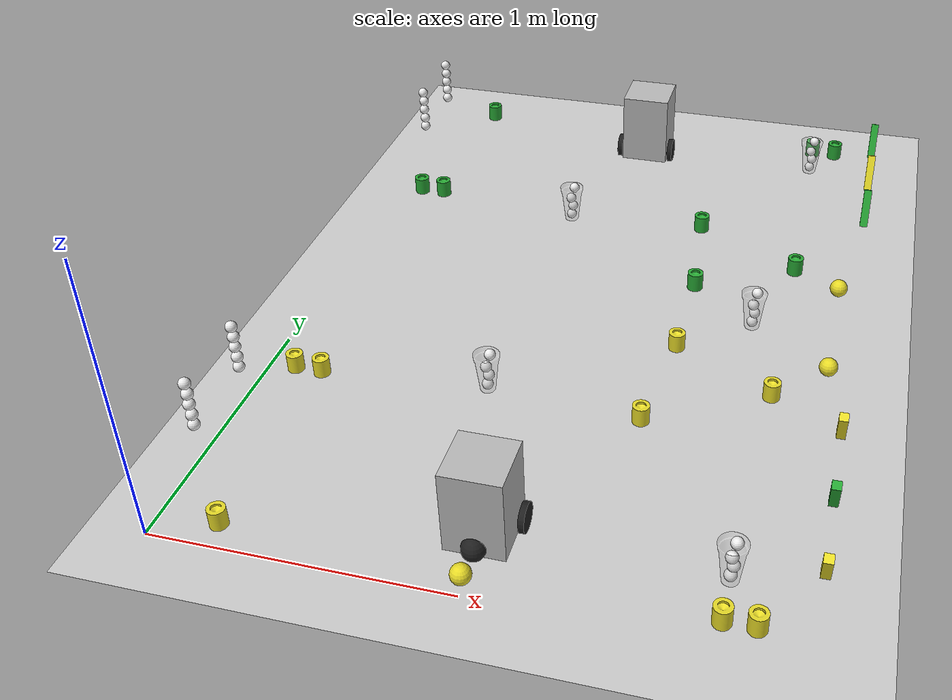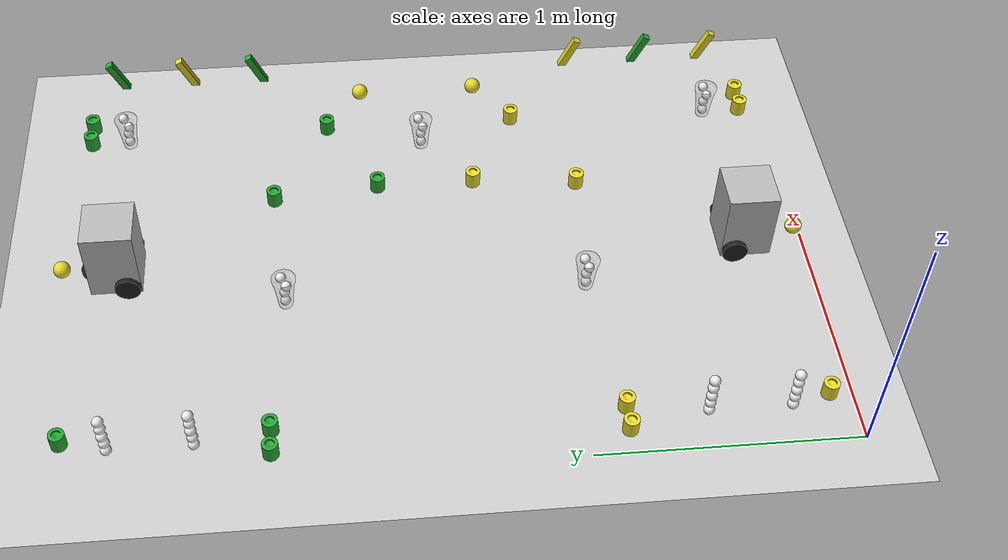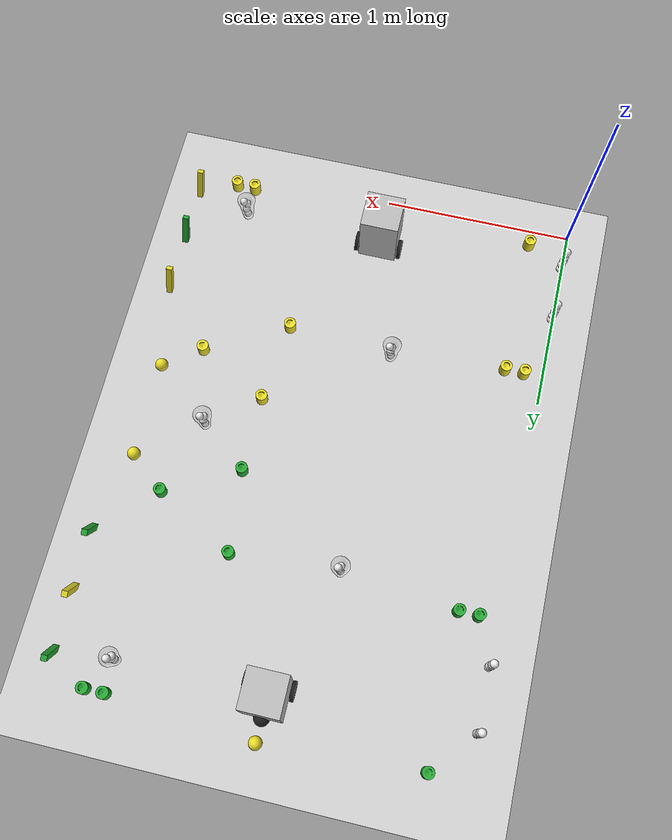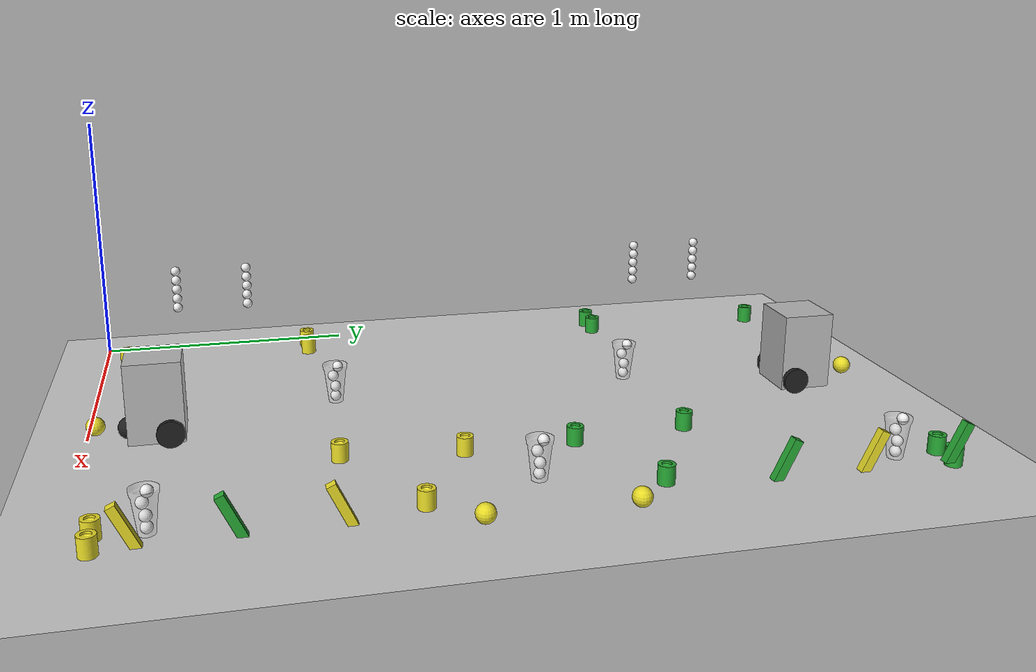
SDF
<sdf version="1.5">
 <world name="default">
  <scene>
   <sky><clouds><speed>12</speed></clouds></sky>
   <ambient>0.4 0.4 0.4 1</ambient>
   <background>0.7 0.7 0.7 1</background>
   <shadows>1</shadows>
  </scene>
  <include><name>soleil</name><uri>model://sun</uri></include>
  <include><name>terre</name><uri>model://ground_plane</uri></include>
  <include><name>rosebot1</name><pose>1 0.25 0 0 0 1.5707</pose><uri>model://rosebot</uri></include>
  <include><name>adversaire</name><pose>1 2.75 0 0 0 -1.5707</pose><uri>model://rosebot</uri></include>
  <include><name>gobelet1</name><pose>1.75 0.25 0 0 0 0</pose><uri>model://gobelet</uri></include>
  <include><name>gobelet2</name><pose>.8 0.91 0 0 0 0</pose><uri>model://gobelet</uri></include>
  <include><name>gobelet3</name><pose>1.65 1.5 0 0 0 0</pose><uri>model://gobelet</uri></include>
  <include><name>gobelet4</name><pose>.8 2.09 0 0 0 0</pose><uri>model://gobelet</uri></include>
  <include><name>gobelet5</name><pose>1.75 2.75 0 0 0 0</pose><uri>model://gobelet</uri></include>
  <include><name>recharge1</name><pose>0.035 .3 0.191 0 0 0</pose><uri>model://popcornx5</uri></include>
  <include><name>recharge2</name><pose>0.035 .6 0.191 0 0 0</pose><uri>model://popcornx5</uri></include>
  <include><name>recharge3</name><pose>0.035 2.4 0.191 0 0 0</pose><uri>model://popcornx5</uri></include>
  <include><name>recharge4</name><pose>0.035 2.7 0.191 0 0 0</pose><uri>model://popcornx5</uri></include>
  <include><name>clap_jaune1</name><pose>2. .260 .101 0 0 1.5707</pose><uri>model://clap_jaune</uri></include>
  <include><name>clap_jaune2</name><pose>2. .860 .101 0 0 1.5707</pose><uri>model://clap_jaune</uri></include>
  <include>
   <name>clap_jaune3</name>
   <pose>2.03 2.450 .101 0 0 -1.5707</pose>
   <uri>model://clap_jaune</uri>
  </include>
  <include><name>clap_vert1</name><pose>2.03 2.750 .101 0 0 -1.5707</pose><uri>model://clap_vert</uri></include>
  <include>
   <name>clap_vert2</name>
   <pose>2.03 2.150 0.101 0 0 -1.5707</pose>
   <uri>model://clap_vert</uri>
  </include>
  <include><name>clap_vert3</name><pose>2 0.550 .101 0 0 1.5707</pose><uri>model://clap_vert</uri></include>
  <include><name>piedjaune1</name><pose>.2 .09 0 0 0 0</pose><uri>model://piedjaune</uri></include>
  <include><name>piedjaune2</name><pose>1.85 0.09 0 0 0 0</pose><uri>model://piedjaune</uri></include>
  <include><name>piedjaune3</name><pose>1.75 0.09 0 0 0 0</pose><uri>model://piedjaune</uri></include>
  <include><name>piedjaune4</name><pose>0.1 0.85 0 0 0 0</pose><uri>model://piedjaune</uri></include>
  <include><name>piedjaune5</name><pose>0.2 0.85 0 0 0 0</pose><uri>model://piedjaune</uri></include>
  <include><name>piedjaune6</name><pose>1.355 0.87 0 0 0 0</pose><uri>model://piedjaune</uri></include>
  <include><name>piedjaune7</name><pose>1.4 1.3 0 0 0 0</pose><uri>model://piedjaune</uri></include>
  <include><name>piedjaune8</name><pose>1.77 1.1 0 0 0 0</pose><uri>model://piedjaune</uri></include>
  <include><name>piedvert1</name><pose>.2 2.91 0 0 0 0</pose><uri>model://piedvert</uri></include>
  <include><name>piedvert2</name><pose>1.85 2.91 0 0 0 0</pose><uri>model://piedvert</uri></include>
  <include><name>piedvert3</name><pose>1.75 2.91 0 0 0 0</pose><uri>model://piedvert</uri></include>
  <include><name>piedvert4</name><pose>0.1 2.15 0 0 0 0</pose><uri>model://piedvert</uri></include>
  <include><name>piedvert5</name><pose>0.2 2.15 0 0 0 0</pose><uri>model://piedvert</uri></include>
  <include><name>piedvert6</name><pose>1.355 2.13 0 0 0 0</pose><uri>model://piedvert</uri></include>
  <include><name>piedvert7</name><pose>1.4 1.7 0 0 0 0</pose><uri>model://piedvert</uri></include>
  <include><name>piedvert8</name><pose>1.77 1.9 0 0 0 0</pose><uri>model://piedvert</uri></include>
  <include><name>ampoule1</name><pose>1. 0.035 .055 0 0 0</pose><uri>model://ampoule</uri></include>
  <include><name>ampoule2</name><pose>1. 2.965 .055 0 0 0</pose><uri>model://ampoule</uri></include>
  <include><name>ampoule3</name><pose>1.95 1.250 .055 0 0 0</pose><uri>model://ampoule</uri></include>
  <include><name>ampoule4</name><pose>1.95 1.750 .055 0 0 0</pose><uri>model://ampoule</uri></include>
  <physics type="ode">
   <max_step_size>0.001</max_step_size>
   <real_time_factor>1</real_time_factor>
   <real_time_update_rate>1000</real_time_update_rate>
   <gravity>0 0 -9.8</gravity>
   <magnetic_field>5.5645e-06 2.28758e-05 -4.23884e-05</magnetic_field>
  </physics>
  <scene><ambient>0.4 0.4 0.4 1</ambient><background>0.7 0.7 0.7 1</background><shadows>1</shadows></scene>
 </world>
</sdf>

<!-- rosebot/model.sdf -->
<sdf version="1.5">
  <model name="Rosebot">
    <link name="chassis">
      <pose>0 0 .16 0 0 0</pose>
      <inertial>
        <mass>5.67</mass>
        <inertia>
          <ixx>0.07</ixx>
          <iyy>0.08</iyy>
          <izz>0.10</izz>
          <ixy>0</ixy>
          <ixz>0</ixz>
          <iyz>0</iyz>
        </inertia>
      </inertial>
      <collision name="collision">
        <geometry>
          <box>
            <size>0.2 0.2 0.3</size>
          </box>
        </geometry>
      </collision>
      <collision name="castor_collision">
        <pose>-0.1 0 -0.12 0 0 0</pose>
        <geometry>
          <sphere>
            <radius>0.04</radius>
          </sphere>
        </geometry>
        <surface>
          <friction>
            <ode>
              <mu>0</mu>
              <mu2>0</mu2>
              <slip1>1.0</slip1>
              <slip2>1.0</slip2>
            </ode>
          </friction>
        </surface>
      </collision>
      <visual name="visual">
        <geometry>
          <box>
            <size>0.2 0.2 0.3</size>
          </box>
        </geometry>
      </visual>
      <visual name="castor_visual">
        <pose>-0.1 0 -0.12 0 0 0</pose>
        <geometry>
          <sphere>
            <radius>0.04</radius>
          </sphere>
        </geometry>
        <material>
          <script>
            <uri>file://media/materials/scripts/gazebo.material</uri>
            <name>Gazebo/FlatBlack</name>
          </script>
        </material>
      </visual>
    </link>
    <link name="right_wheel">
      <pose>0.05 -.115 0.05 0 1.5707 1.5707</pose>
      <inertial>
        <mass>1.5</mass>
        <inertia>
          <ixx>0.0051</ixx>
          <iyy>0.0051</iyy>
          <izz>0.0090</izz>
          <ixy>0</ixy>
          <ixz>0</ixz>
          <iyz>0</iyz>
        </inertia>
      </inertial>
      <collision name="collision">
        <geometry>
          <cylinder>
            <radius>0.05</radius>
            <length>0.02</length>
          </cylinder>
        </geometry>
        <surface>
          <friction>
            <ode>
              <mu>100000.0</mu>
              <mu2>100000.0</mu2>
              <slip1>0.0</slip1>
              <slip2>0.0</slip2>
            </ode>
          </friction>
        </surface>
      </collision>
      <visual name="visual">
        <geometry>
          <cylinder>
            <radius>0.05</radius>
            <length>0.02</length>
          </cylinder>
        </geometry>
        <material>
          <script>
            <uri>file://media/materials/scripts/gazebo.material</uri>
            <name>Gazebo/FlatBlack</name>
          </script>
        </material>
      </visual>
    </link>
    <link name="left_wheel">
      <pose>0.05 .115 0.05 0 1.5707 1.5707</pose>
      <inertial>
        <mass>1.5</mass>
        <inertia>
          <ixx>0.0051</ixx>
          <iyy>0.0051</iyy>
          <izz>0.0090</izz>
          <ixy>0</ixy>
          <ixz>0</ixz>
          <iyz>0</iyz>
        </inertia>
      </inertial>
      <collision name="collision">
        <geometry>
          <cylinder>
            <radius>0.05</radius>
            <length>0.02</length>
          </cylinder>
        </geometry>
        <surface>
          <friction>
            <ode>
              <mu>100000.0</mu>
              <mu2>100000.0</mu2>
              <slip1>0.0</slip1>
              <slip2>0.0</slip2>
            </ode>
          </friction>
        </surface>
      </collision>
      <visual name="visual">
        <geometry>
          <cylinder>
            <radius>0.05</radius>
            <length>0.02</length>
          </cylinder>
        </geometry>
        <material>
          <script>
            <uri>file://media/materials/scripts/gazebo.material</uri>
            <name>Gazebo/FlatBlack</name>
          </script>
        </material>
      </visual>
    </link>
    <joint name="left_wheel_hinge" type="revolute">
      <child>left_wheel</child>
      <parent>chassis</parent>
      <axis>
        <xyz>0 1 0</xyz>
        <use_parent_model_frame>true</use_parent_model_frame>
      </axis>
    </joint>
    <joint name="right_wheel_hinge" type="revolute">
      <child>right_wheel</child>
      <parent>chassis</parent>
      <axis>
        <xyz>0 1 0</xyz>
        <use_parent_model_frame>true</use_parent_model_frame>
      </axis>
    </joint>
	<plugin name="rosebot_gazebo" filename="libgazebo_ros_diff_drive.so">
		<updateRate>100</updateRate>
		<leftJoint>left_wheel_hinge</leftJoint>
		<rightJoint>right_wheel_hinge</rightJoint>
		<wheelAcceleration>0</wheelAcceleration>
	    <wheelDiameter>0.1</wheelDiameter>
		<wheelTorque>5.0</wheelTorque>
		<publishWheelTF>1</publishWheelTF>
	</plugin>

  </model>
</sdf>

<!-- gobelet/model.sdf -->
<sdf version="1.5">
  <model name="gobelet">
	<link name="link">
       <inertial>
          <pose>0 0 0.078 0 0 0</pose>
		  <mass>.03</mass>
		  <inertia>
			<ixx>0.000082165</ixx>
		  	<ixy>0</ixy>
		  	<ixz>0</ixz>
		  	<iyy>0.000082165</iyy>
		  	<iyz>0</iyz>
		  	<izz>0.00003787</izz>
		  </inertia>
        </inertial>
	<collision name="collision">
	  <geometry>
	    <mesh>
		<scale>0.001 0.001 0.001</scale>
		<uri>model://gobelet/meshes/gobelet.dae</uri>
	    </mesh>
	  </geometry>
	</collision>
	<visual name="visual">
 	  <transparency>.7</transparency>
	  <geometry>
	    <mesh>
		<scale>0.001 0.001 0.001</scale>
		<uri>model://gobelet/meshes/gobelet.dae</uri>
	    </mesh>
	  </geometry>
        <material>
          <script>
            <uri>file://media/materials/scripts/gazebo.material</uri>
            <name>Gazebo/White</name>
          </script>
        </material>
	</visual>
      </link>
	 <include>
		<name>pop1</name>
		<pose>0 0 .022 0 0 0</pose>
		<uri>model://popcorn</uri>
	    </include>
	    <include>
		<name>pop2</name>
		<pose>0.006 0 .063 0 0 0</pose>
		<uri>model://popcorn</uri>
	    </include>
	    <include>
		<name>pop3</name>
		<pose>0 -0.008 .104 0 0 0</pose>
		<uri>model://popcorn</uri>
	    </include>
	    <include>
		<name>pop4</name>
		<pose>0.01 0.01 .145 0 0 0</pose>
		<uri>model://popcorn</uri>
	    </include>
    </model>
 </sdf>

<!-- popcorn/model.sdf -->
<sdf version="1.5">
  <!--une balle de ping pong pèse 2,7 g pour un rayon de 20mm-->
  <model name="popcorn">
    <link name="link">
      <self_collide>1</self_collide>
      <inertial>
		<mass>.0027</mass>
	    <inertia>
			<!--2/3mr^2 pour une sphere creuse-->
            <ixx>0.00000072</ixx>
            <ixy>0</ixy>
            <ixz>0</ixz>
            <iyy>0.00000072</iyy>
            <iyz>0</iyz>
            <izz>0.00000072</izz>
        </inertia>
      </inertial>
	  <collision name="collision">
		<max_contacts>1</max_contacts>
        <geometry>
          <sphere>
            <radius>0.02</radius><!-- specification E2015_Rules_EU_EN_final.pdf3 -->
          </sphere>
        </geometry>
		<surface>
		  <bounce>
			<restitution_coefficient>0.9128</restitution_coefficient>
			<threshold>0.001</threshold>
		  </bounce>
          <contact>
            <ode>
              <max_vel>10</max_vel>
            </ode>
          </contact>
		  <friction>
			<ode>
			  <mu>1</mu>
			  <mu2>1</mu2>
			</ode>
		  </friction>
		</surface>
      </collision>
      <visual name="visual">
        <geometry>
          <sphere>
            <radius>0.02</radius>
          </sphere>
        </geometry>
        <material>
          <script>
            <uri>file://media/materials/scripts/gazebo.material</uri>
            <name>Gazebo/White</name>
          </script>
        </material>
      </visual>
    </link>
    </model>
 </sdf>

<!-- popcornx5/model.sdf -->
<sdf version="1.5">
  <model name="popcornx5">
    <include>
		<name>pop1</name>
		<pose>0 0 0 0 0 0</pose>
		<uri>model://popcorn</uri>
    </include>
    <include>
		<name>pop2</name>
		<pose>0.001 0 .041 0 0 0</pose>
		<uri>model://popcorn</uri>
    </include>
    <include>
		<name>pop3</name>
		<pose>-0.001 0.001 .082 0 0 0</pose>
		<uri>model://popcorn</uri>
    </include>
    <include>
		<name>pop4</name>
		<pose>0.001 0.001 .123 0 0 0</pose>
		<uri>model://popcorn</uri>
    </include>
    <include>
		<name>pop5</name>
		<pose>0 0.001 .164 0 0 0</pose>
		<uri>model://popcorn</uri>
    </include>
  </model>
 </sdf>

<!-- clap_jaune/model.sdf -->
<sdf version="1.5">
  <model name="clap_jaune">
    <link name="clap">
      <self_collide>1</self_collide>
      <inertial>
		<pose>-0.047 -0.015 0.065 0 0 0</pose>
		<mass>0.15</mass>
        <inertia>
            <ixx>0.0002222088631592061</ixx>
            <ixy>0.00009576025452225838</ixy>
            <ixz>0</ixz>
            <iyy>0.00026807677377627993</iyy>
            <iyz>0</iyz>
            <izz>0.00006835231764351083</izz>
        </inertia>
	  </inertial>
	<collision name="collision">
	  <geometry>
	    <mesh>
		<scale>0.001 0.001 0.001</scale>
		<uri>model://clap_jaune/meshes/clap.dae</uri>
	    </mesh>
	  </geometry>
	</collision>
	<visual name="visual">
	  <geometry>
	    <mesh>
		<scale>0.001 0.001 0.001</scale>
		<uri>model://clap_jaune/meshes/clap.dae</uri>
	    </mesh>
	  </geometry>
        <material>
          <script>
            <uri>file://media/materials/scripts/gazebo.material</uri>
            <name>Gazebo/Yellow</name>
          </script>
        </material>
	</visual>
      </link>
      <joint type="revolute" name="hinge">
	<pose>0 0 0 0 -2.007 0</pose><!-- 2.007 rad = 115 degres-->
	<child>clap</child>
	<parent>world</parent>
	<axis>
	   <xyz>0 1 0</xyz>
	   <limit>
		<upper>2.007</upper>
		<lower>0</lower>
	   </limit>
	</axis>

       </joint>
    </model>
 </sdf>

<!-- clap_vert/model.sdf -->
<sdf version="1.5">
  <model name="clap_vert">
    <link name="clap">
      <self_collide>1</self_collide>
      <inertial>
		<pose>-0.047 -0.015 0.065 0 0 0</pose>
		<mass>0.15</mass>
        <inertia>
            <ixx>0.0002222088631592061</ixx>
            <ixy>0.00009576025452225838</ixy>
            <ixz>0</ixz>
            <iyy>0.00026807677377627993</iyy>
            <iyz>0</iyz>
            <izz>0.00006835231764351083</izz>
        </inertia>
	  </inertial>
	<collision name="collision">
	  <geometry>
	    <mesh>
		<scale>0.001 0.001 0.001</scale>
		<uri>model://clap_jaune/meshes/clap.dae</uri>
	    </mesh>
	  </geometry>
	</collision>
	<visual name="visual">
	  <geometry>
	    <mesh>
		<scale>0.001 0.001 0.001</scale>
		<uri>model://clap_jaune/meshes/clap.dae</uri>
	    </mesh>
	  </geometry>
        <material>
          <script>
            <uri>file://media/materials/scripts/gazebo.material</uri>
            <name>Gazebo/Green</name>
          </script>
        </material>
	</visual>
      </link>
      <joint type="revolute" name="hinge">
	<pose>0 0 0 0 -2.007 0</pose><!-- 2.007 rad = 115 degres-->
	<child>clap</child>
	<parent>world</parent>
	<axis>
	   <xyz>0 1 0</xyz>
	   <limit>
		<upper>2.007</upper>
		<lower>0</lower>
	   </limit>
	</axis>

       </joint>
    </model>
 </sdf>

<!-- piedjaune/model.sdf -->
<sdf version="1.5">
  <model name="pied jaune">
	<link name="link">
      <inertial>
		<pose>0 0 0.033 0 0 0</pose>
		<mass>0.2</mass>
        <inertia>
            <ixx>0.0001226316106071553</ixx>
            <ixy>0</ixy>
            <ixz>0</ixz>
            <iyy>0.0001226316106071553</iyy>
            <iyz>0</iyz>
            <izz>0.000093607530973</izz>
        </inertia>
      </inertial>
	<collision name="collision">
	  <geometry>
	    <mesh>
		<scale>0.001 0.001 0.001</scale>
		<uri>model://piedjaune/meshes/pied.dae</uri>
	    </mesh>
	  </geometry>
	</collision>
	<visual name="visual">
	  <geometry>
	    <mesh>
		<scale>0.001 0.001 0.001</scale>
		<uri>model://piedjaune/meshes/pied.dae</uri>
	    </mesh>
	  </geometry>
        <material>
          <script>
            <uri>file://media/materials/scripts/gazebo.material</uri>
            <name>Gazebo/Yellow</name>
          </script>
        </material>
	</visual>
      </link>
    </model>
 </sdf>

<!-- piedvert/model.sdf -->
<sdf version="1.5">
  <model name="pied vert">
	<link name="link">
      <inertial>
		<pose>0 0 0.033 0 0 0</pose>
		<mass>0.2</mass>
        <inertia>
            <ixx>0.0001226316106071553</ixx>
            <ixy>0</ixy>
            <ixz>0</ixz>
            <iyy>0.0001226316106071553</iyy>
            <iyz>0</iyz>
            <izz>0.000093607530973</izz>
        </inertia>
      </inertial>
 	<collision name="collision">
	  <geometry>
	    <mesh>
		<scale>0.001 0.001 0.001</scale>
		<uri>model://piedvert/meshes/pied.dae</uri>
	    </mesh>
	  </geometry>
	</collision>
	<visual name="visual">
	  <geometry>
	    <mesh>
		<scale>0.001 0.001 0.001</scale>
		<uri>model://piedvert/meshes/pied.dae</uri>
	    </mesh>
	  </geometry>
        <material>
          <script>
            <uri>file://media/materials/scripts/gazebo.material</uri>
            <name>Gazebo/Green</name>
          </script>
        </material>
	</visual>
      </link>
    </model>
 </sdf>

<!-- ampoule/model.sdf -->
<sdf version="1.5">
  <model name="ampoule">
    <link name="link">
      <!--poids d'une balle de tennis FIT: 56,70 gr à 58,5 gr. -->
      <inertial>
		<mass>.058</mass>
	    <inertia>
			<!--2/3mr^2 pour une sphere creuse-->
            <ixx>0.00004339</ixx>
            <ixy>0</ixy>
            <ixz>0</ixz>
            <iyy>0.00004339</iyy>
            <iyz>0</iyz>
            <izz>0.00004339</izz>
        </inertia>
      </inertial>
	  <collision name="collision">
		<max_contacts>1</max_contacts>
        <geometry>
          <sphere>
            <radius>0.033</radius><!-- specification E2015_Rules_EU_EN_final.pdf3 -->
          </sphere>
        </geometry>
		<surface>
		  <bounce>
			<restitution_coefficient>0.728</restitution_coefficient>
			<threshold>0.01</threshold>
		  </bounce>
         <contact>
            <ode>
              <max_vel>10</max_vel>
            </ode>
          </contact>
		  <friction>
			<ode>
			  <mu>1</mu>
			  <mu2>1</mu2>
			</ode>
		  </friction>
		</surface>
      </collision>
      <visual name="visual">
        <geometry>
          <sphere>
            <radius>0.0335</radius>
          </sphere>
        </geometry>
        <material>
          <script>
            <uri>file://media/materials/scripts/gazebo.material</uri>
            <name>Gazebo/Yellow</name>
          </script>
        </material>
      </visual>
    </link>
    </model>
 </sdf>
